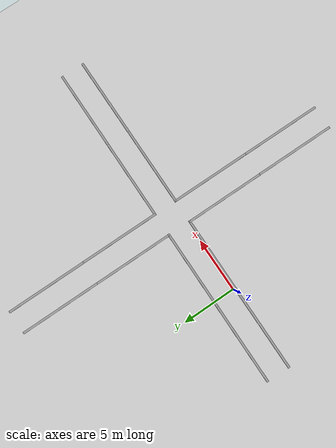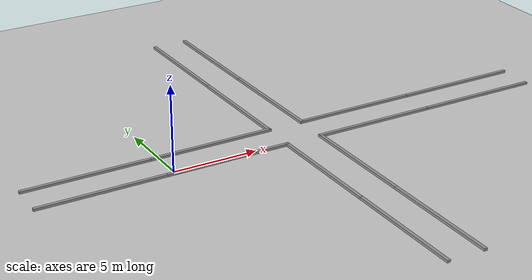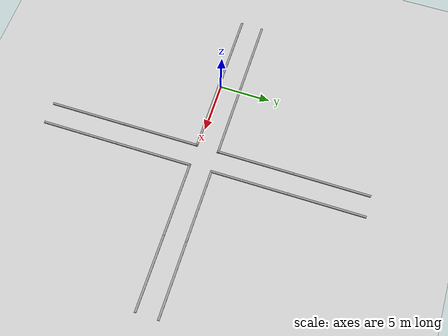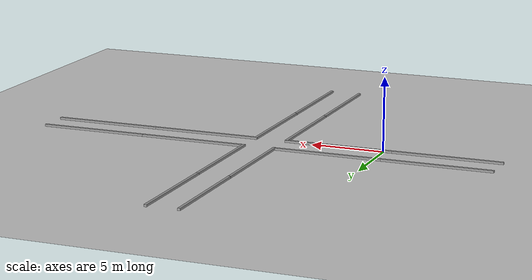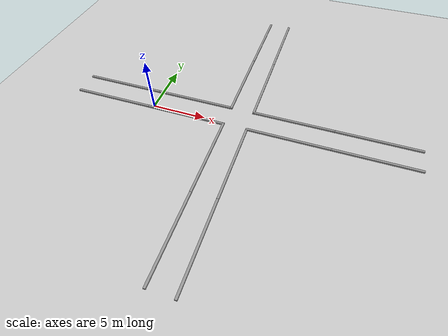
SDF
<sdf version="1.4">
 <world name="default">
  <model name="ground_plane">
   <static>1</static>
   <link name="link">
    <collision name="collision">
     <geometry><plane><normal>0 0 1</normal><size>100 100</size></plane></geometry>
     <surface><friction><ode><mu>100</mu><mu2>50</mu2></ode></friction></surface>
    </collision>
    <visual name="visual">
     <cast_shadows>0</cast_shadows>
     <geometry><plane><normal>0 0 1</normal><size>100 100</size></plane></geometry>
     <material>
      <script><uri>file://media/materials/scripts/gazebo.material</uri><name>Gazebo/Grey</name></script>
     </material>
    </visual>
   </link>
  </model>
  <light name="sun" type="directional">
   <pose>0 0 10 0 -0 0</pose>
   <diffuse>0.8 0.8 0.8 1</diffuse>
   <specular>0.2 0.2 0.2 1</specular>
   <attenuation>
    <range>1000</range>
    <constant>0.9</constant>
    <linear>0.01</linear>
    <quadratic>0.001</quadratic>
   </attenuation>
   <direction>-0.5 0.1 -0.9</direction>
  </light>
  <model name="ground">
   <link name="body">
    <collision name="geom">
     <geometry><plane><normal>0 0 1</normal><size>1 1</size></plane></geometry>
     <surface><friction><ode><mu>100</mu><mu2>50</mu2></ode></friction></surface>
    </collision>
   </link>
   <static>1</static>
  </model>
  <model name="grey_wall0_2">
   <link name="link">
    <inertial>
     <mass>1</mass>
     <inertia><ixx>1</ixx><ixy>0</ixy><ixz>0</ixz><iyy>1</iyy><iyz>0</iyz><izz>1</izz></inertia>
    </inertial>
    <visual name="visual">
     <cast_shadows>0</cast_shadows>
     <geometry><box><size>7.5 0.2 0.2</size></box></geometry>
     <material>
      <script>
       <uri>model://grey_wall/materials/scripts</uri>
       <uri>model://grey_wall/materials/textures</uri>
       <name>vrc/grey_wall</name>
      </script>
      <shader type="pixel"><normal_map>__default__</normal_map></shader>
      <ambient>1 1 1 1</ambient>
      <diffuse>1 1 1 1</diffuse>
      <specular>0 0 0 1</specular>
      <emissive>0 0 0 1</emissive>
     </material>
    </visual>
    <collision name="collision">
     <geometry><box><size>7.5 0.2 0.2</size></box></geometry>
     <surface>
      <friction>
       <ode><mu>1</mu><mu2>1</mu2><fdir1>0 0 0</fdir1><slip1>0</slip1><slip2>0</slip2></ode>
       <torsional>
        <coefficient>1</coefficient>
        <patch_radius>0</patch_radius>
        <surface_radius>0</surface_radius>
        <use_patch_radius>1</use_patch_radius>
        <ode><slip>0</slip></ode>
       </torsional>
      </friction>
      <bounce><restitution_coefficient>0</restitution_coefficient><threshold>1e+06</threshold></bounce>
      <contact>
       <collide_without_contact>0</collide_without_contact>
       <collide_without_contact_bitmask>1</collide_without_contact_bitmask>
       <collide_bitmask>1</collide_bitmask>
       <ode>
        <soft_cfm>0</soft_cfm>
        <soft_erp>0.2</soft_erp>
        <kp>1e+13</kp>
        <kd>1</kd>
        <max_vel>0.01</max_vel>
        <min_depth>0</min_depth>
       </ode>
       <bullet>
        <split_impulse>1</split_impulse>
        <split_impulse_penetration_threshold>-0.01</split_impulse_penetration_threshold>
        <soft_cfm>0</soft_cfm>
        <soft_erp>0.2</soft_erp>
        <kp>1e+13</kp>
        <kd>1</kd>
       </bullet>
      </contact>
     </surface>
    </collision>
   </link>
   <static>1</static>
   <pose>3.24738 -0.199036 0 0 -0 0</pose>
  </model>
  <model name="grey_wall0_2_clone">
   <link name="link">
    <inertial>
     <mass>1</mass>
     <inertia><ixx>1</ixx><ixy>0</ixy><ixz>0</ixz><iyy>1</iyy><iyz>0</iyz><izz>1</izz></inertia>
    </inertial>
    <visual name="visual">
     <cast_shadows>0</cast_shadows>
     <geometry><box><size>7.5 0.2 0.2</size></box></geometry>
     <material>
      <script>
       <uri>model://grey_wall/materials/scripts</uri>
       <uri>model://grey_wall/materials/textures</uri>
       <name>vrc/grey_wall</name>
      </script>
      <shader type="pixel"><normal_map>__default__</normal_map></shader>
      <ambient>1 1 1 1</ambient>
      <diffuse>1 1 1 1</diffuse>
      <specular>0 0 0 1</specular>
      <emissive>0 0 0 1</emissive>
     </material>
    </visual>
    <collision name="collision">
     <geometry><box><size>7.5 0.2 0.2</size></box></geometry>
     <surface>
      <friction>
       <ode><mu>1</mu><mu2>1</mu2><fdir1>0 0 0</fdir1><slip1>0</slip1><slip2>0</slip2></ode>
       <torsional>
        <coefficient>1</coefficient>
        <patch_radius>0</patch_radius>
        <surface_radius>0</surface_radius>
        <use_patch_radius>1</use_patch_radius>
        <ode><slip>0</slip></ode>
       </torsional>
      </friction>
      <bounce><restitution_coefficient>0</restitution_coefficient><threshold>1e+06</threshold></bounce>
      <contact>
       <collide_without_contact>0</collide_without_contact>
       <collide_without_contact_bitmask>1</collide_without_contact_bitmask>
       <collide_bitmask>1</collide_bitmask>
       <ode>
        <soft_cfm>0</soft_cfm>
        <soft_erp>0.2</soft_erp>
        <kp>1e+13</kp>
        <kd>1</kd>
        <max_vel>0.01</max_vel>
        <min_depth>0</min_depth>
       </ode>
       <bullet>
        <split_impulse>1</split_impulse>
        <split_impulse_penetration_threshold>-0.01</split_impulse_penetration_threshold>
        <soft_cfm>0</soft_cfm>
        <soft_erp>0.2</soft_erp>
        <kp>1e+13</kp>
        <kd>1</kd>
       </bullet>
      </contact>
     </surface>
    </collision>
   </link>
   <static>1</static>
   <pose>-4.25143 -0.199506 0 0 -0 0</pose>
  </model>
  <model name="grey_wall0_2_clone_0">
   <link name="link">
    <inertial>
     <mass>1</mass>
     <inertia><ixx>1</ixx><ixy>0</ixy><ixz>0</ixz><iyy>1</iyy><iyz>0</iyz><izz>1</izz></inertia>
    </inertial>
    <visual name="visual">
     <cast_shadows>0</cast_shadows>
     <geometry><box><size>7.5 0.2 0.2</size></box></geometry>
     <material>
      <script>
       <uri>model://grey_wall/materials/scripts</uri>
       <uri>model://grey_wall/materials/textures</uri>
       <name>vrc/grey_wall</name>
      </script>
      <shader type="pixel"><normal_map>__default__</normal_map></shader>
      <ambient>1 1 1 1</ambient>
      <diffuse>1 1 1 1</diffuse>
      <specular>0 0 0 1</specular>
      <emissive>0 0 0 1</emissive>
     </material>
    </visual>
    <collision name="collision">
     <geometry><box><size>7.5 0.2 0.2</size></box></geometry>
     <surface>
      <friction>
       <ode><mu>1</mu><mu2>1</mu2><fdir1>0 0 0</fdir1><slip1>0</slip1><slip2>0</slip2></ode>
       <torsional>
        <coefficient>1</coefficient>
        <patch_radius>0</patch_radius>
        <surface_radius>0</surface_radius>
        <use_patch_radius>1</use_patch_radius>
        <ode><slip>0</slip></ode>
       </torsional>
      </friction>
      <bounce><restitution_coefficient>0</restitution_coefficient><threshold>1e+06</threshold></bounce>
      <contact>
       <collide_without_contact>0</collide_without_contact>
       <collide_without_contact_bitmask>1</collide_without_contact_bitmask>
       <collide_bitmask>1</collide_bitmask>
       <ode>
        <soft_cfm>0</soft_cfm>
        <soft_erp>0.2</soft_erp>
        <kp>1e+13</kp>
        <kd>1</kd>
        <max_vel>0.01</max_vel>
        <min_depth>0</min_depth>
       </ode>
       <bullet>
        <split_impulse>1</split_impulse>
        <split_impulse_penetration_threshold>-0.01</split_impulse_penetration_threshold>
        <soft_cfm>0</soft_cfm>
        <soft_erp>0.2</soft_erp>
        <kp>1e+13</kp>
        <kd>1</kd>
       </bullet>
      </contact>
     </surface>
    </collision>
   </link>
   <static>1</static>
   <pose>3.30265 1.94618 0 0 -0 0</pose>
  </model>
  <model name="grey_wall0_2_clone_1">
   <link name="link">
    <inertial>
     <mass>1</mass>
     <inertia><ixx>1</ixx><ixy>0</ixy><ixz>0</ixz><iyy>1</iyy><iyz>0</iyz><izz>1</izz></inertia>
    </inertial>
    <visual name="visual">
     <cast_shadows>0</cast_shadows>
     <geometry><box><size>7.5 0.2 0.2</size></box></geometry>
     <material>
      <script>
       <uri>model://grey_wall/materials/scripts</uri>
       <uri>model://grey_wall/materials/textures</uri>
       <name>vrc/grey_wall</name>
      </script>
      <shader type="pixel"><normal_map>__default__</normal_map></shader>
      <ambient>1 1 1 1</ambient>
      <diffuse>1 1 1 1</diffuse>
      <specular>0 0 0 1</specular>
      <emissive>0 0 0 1</emissive>
     </material>
    </visual>
    <collision name="collision">
     <geometry><box><size>7.5 0.2 0.2</size></box></geometry>
     <surface>
      <friction>
       <ode><mu>1</mu><mu2>1</mu2><fdir1>0 0 0</fdir1><slip1>0</slip1><slip2>0</slip2></ode>
       <torsional>
        <coefficient>1</coefficient>
        <patch_radius>0</patch_radius>
        <surface_radius>0</surface_radius>
        <use_patch_radius>1</use_patch_radius>
        <ode><slip>0</slip></ode>
       </torsional>
      </friction>
      <bounce><restitution_coefficient>0</restitution_coefficient><threshold>1e+06</threshold></bounce>
      <contact>
       <collide_without_contact>0</collide_without_contact>
       <collide_without_contact_bitmask>1</collide_without_contact_bitmask>
       <collide_bitmask>1</collide_bitmask>
       <ode>
        <soft_cfm>0</soft_cfm>
        <soft_erp>0.2</soft_erp>
        <kp>1e+13</kp>
        <kd>1</kd>
        <max_vel>0.01</max_vel>
        <min_depth>0</min_depth>
       </ode>
       <bullet>
        <split_impulse>1</split_impulse>
        <split_impulse_penetration_threshold>-0.01</split_impulse_penetration_threshold>
        <soft_cfm>0</soft_cfm>
        <soft_erp>0.2</soft_erp>
        <kp>1e+13</kp>
        <kd>1</kd>
       </bullet>
      </contact>
     </surface>
    </collision>
   </link>
   <static>1</static>
   <pose>-4.1956 1.94715 0 0 -0 0</pose>
  </model>
  <model name="grey_wall0_2_clone_2">
   <link name="link">
    <inertial>
     <mass>1</mass>
     <inertia><ixx>1</ixx><ixy>0</ixy><ixz>0</ixz><iyy>1</iyy><iyz>0</iyz><izz>1</izz></inertia>
    </inertial>
    <visual name="visual">
     <cast_shadows>0</cast_shadows>
     <geometry><box><size>7.5 0.2 0.2</size></box></geometry>
     <material>
      <script>
       <uri>model://grey_wall/materials/scripts</uri>
       <uri>model://grey_wall/materials/textures</uri>
       <name>vrc/grey_wall</name>
      </script>
      <shader type="pixel"><normal_map>__default__</normal_map></shader>
      <ambient>1 1 1 1</ambient>
      <diffuse>1 1 1 1</diffuse>
      <specular>0 0 0 1</specular>
      <emissive>0 0 0 1</emissive>
     </material>
    </visual>
    <collision name="collision">
     <geometry><box><size>7.5 0.2 0.2</size></box></geometry>
     <surface>
      <friction>
       <ode><mu>1</mu><mu2>1</mu2><fdir1>0 0 0</fdir1><slip1>0</slip1><slip2>0</slip2></ode>
       <torsional>
        <coefficient>1</coefficient>
        <patch_radius>0</patch_radius>
        <surface_radius>0</surface_radius>
        <use_patch_radius>1</use_patch_radius>
        <ode><slip>0</slip></ode>
       </torsional>
      </friction>
      <bounce><restitution_coefficient>0</restitution_coefficient><threshold>1e+06</threshold></bounce>
      <contact>
       <collide_without_contact>0</collide_without_contact>
       <collide_without_contact_bitmask>1</collide_without_contact_bitmask>
       <collide_bitmask>1</collide_bitmask>
       <ode>
        <soft_cfm>0</soft_cfm>
        <soft_erp>0.2</soft_erp>
        <kp>1e+13</kp>
        <kd>1</kd>
        <max_vel>0.01</max_vel>
        <min_depth>0</min_depth>
       </ode>
       <bullet>
        <split_impulse>1</split_impulse>
        <split_impulse_penetration_threshold>-0.01</split_impulse_penetration_threshold>
        <soft_cfm>0</soft_cfm>
        <soft_erp>0.2</soft_erp>
        <kp>1e+13</kp>
        <kd>1</kd>
       </bullet>
      </contact>
     </surface>
    </collision>
   </link>
   <static>1</static>
   <pose>12.757 -0.18301 0 0 -0 0</pose>
  </model>
  <model name="grey_wall0_2_clone_3">
   <link name="link">
    <inertial>
     <mass>1</mass>
     <inertia><ixx>1</ixx><ixy>0</ixy><ixz>0</ixz><iyy>1</iyy><iyz>0</iyz><izz>1</izz></inertia>
    </inertial>
    <visual name="visual">
     <cast_shadows>0</cast_shadows>
     <geometry><box><size>7.5 0.2 0.2</size></box></geometry>
     <material>
      <script>
       <uri>model://grey_wall/materials/scripts</uri>
       <uri>model://grey_wall/materials/textures</uri>
       <name>vrc/grey_wall</name>
      </script>
      <shader type="pixel"><normal_map>__default__</normal_map></shader>
      <ambient>1 1 1 1</ambient>
      <diffuse>1 1 1 1</diffuse>
      <specular>0 0 0 1</specular>
      <emissive>0 0 0 1</emissive>
     </material>
    </visual>
    <collision name="collision">
     <geometry><box><size>7.5 0.2 0.2</size></box></geometry>
     <surface>
      <friction>
       <ode><mu>1</mu><mu2>1</mu2><fdir1>0 0 0</fdir1><slip1>0</slip1><slip2>0</slip2></ode>
       <torsional>
        <coefficient>1</coefficient>
        <patch_radius>0</patch_radius>
        <surface_radius>0</surface_radius>
        <use_patch_radius>1</use_patch_radius>
        <ode><slip>0</slip></ode>
       </torsional>
      </friction>
      <bounce><restitution_coefficient>0</restitution_coefficient><threshold>1e+06</threshold></bounce>
      <contact>
       <collide_without_contact>0</collide_without_contact>
       <collide_without_contact_bitmask>1</collide_without_contact_bitmask>
       <collide_bitmask>1</collide_bitmask>
       <ode>
        <soft_cfm>0</soft_cfm>
        <soft_erp>0.2</soft_erp>
        <kp>1e+13</kp>
        <kd>1</kd>
        <max_vel>0.01</max_vel>
        <min_depth>0</min_depth>
       </ode>
       <bullet>
        <split_impulse>1</split_impulse>
        <split_impulse_penetration_threshold>-0.01</split_impulse_penetration_threshold>
        <soft_cfm>0</soft_cfm>
        <soft_erp>0.2</soft_erp>
        <kp>1e+13</kp>
        <kd>1</kd>
       </bullet>
      </contact>
     </surface>
    </collision>
   </link>
   <static>1</static>
   <pose>20.1859 -0.183167 0 0 -0 0</pose>
  </model>
  <model name="grey_wall0_2_clone_4">
   <link name="link">
    <inertial>
     <mass>1</mass>
     <inertia><ixx>1</ixx><ixy>0</ixy><ixz>0</ixz><iyy>1</iyy><iyz>0</iyz><izz>1</izz></inertia>
    </inertial>
    <visual name="visual">
     <cast_shadows>0</cast_shadows>
     <geometry><box><size>7.5 0.2 0.2</size></box></geometry>
     <material>
      <script>
       <uri>model://grey_wall/materials/scripts</uri>
       <uri>model://grey_wall/materials/textures</uri>
       <name>vrc/grey_wall</name>
      </script>
      <shader type="pixel"><normal_map>__default__</normal_map></shader>
      <ambient>1 1 1 1</ambient>
      <diffuse>1 1 1 1</diffuse>
      <specular>0 0 0 1</specular>
      <emissive>0 0 0 1</emissive>
     </material>
    </visual>
    <collision name="collision">
     <geometry><box><size>7.5 0.2 0.2</size></box></geometry>
     <surface>
      <friction>
       <ode><mu>1</mu><mu2>1</mu2><fdir1>0 0 0</fdir1><slip1>0</slip1><slip2>0</slip2></ode>
       <torsional>
        <coefficient>1</coefficient>
        <patch_radius>0</patch_radius>
        <surface_radius>0</surface_radius>
        <use_patch_radius>1</use_patch_radius>
        <ode><slip>0</slip></ode>
       </torsional>
      </friction>
      <bounce><restitution_coefficient>0</restitution_coefficient><threshold>1e+06</threshold></bounce>
      <contact>
       <collide_without_contact>0</collide_without_contact>
       <collide_without_contact_bitmask>1</collide_without_contact_bitmask>
       <collide_bitmask>1</collide_bitmask>
       <ode>
        <soft_cfm>0</soft_cfm>
        <soft_erp>0.2</soft_erp>
        <kp>1e+13</kp>
        <kd>1</kd>
        <max_vel>0.01</max_vel>
        <min_depth>0</min_depth>
       </ode>
       <bullet>
        <split_impulse>1</split_impulse>
        <split_impulse_penetration_threshold>-0.01</split_impulse_penetration_threshold>
        <soft_cfm>0</soft_cfm>
        <soft_erp>0.2</soft_erp>
        <kp>1e+13</kp>
        <kd>1</kd>
       </bullet>
      </contact>
     </surface>
    </collision>
   </link>
   <static>1</static>
   <pose>12.7674 1.96146 0 0 -0 0</pose>
  </model>
  <model name="grey_wall0_2_clone_5">
   <link name="link">
    <inertial>
     <mass>1</mass>
     <inertia><ixx>1</ixx><ixy>0</ixy><ixz>0</ixz><iyy>1</iyy><iyz>0</iyz><izz>1</izz></inertia>
    </inertial>
    <visual name="visual">
     <cast_shadows>0</cast_shadows>
     <geometry><box><size>7.5 0.2 0.2</size></box></geometry>
     <material>
      <script>
       <uri>model://grey_wall/materials/scripts</uri>
       <uri>model://grey_wall/materials/textures</uri>
       <name>vrc/grey_wall</name>
      </script>
      <shader type="pixel"><normal_map>__default__</normal_map></shader>
      <ambient>1 1 1 1</ambient>
      <diffuse>1 1 1 1</diffuse>
      <specular>0 0 0 1</specular>
      <emissive>0 0 0 1</emissive>
     </material>
    </visual>
    <collision name="collision">
     <geometry><box><size>7.5 0.2 0.2</size></box></geometry>
     <surface>
      <friction>
       <ode><mu>1</mu><mu2>1</mu2><fdir1>0 0 0</fdir1><slip1>0</slip1><slip2>0</slip2></ode>
       <torsional>
        <coefficient>1</coefficient>
        <patch_radius>0</patch_radius>
        <surface_radius>0</surface_radius>
        <use_patch_radius>1</use_patch_radius>
        <ode><slip>0</slip></ode>
       </torsional>
      </friction>
      <bounce><restitution_coefficient>0</restitution_coefficient><threshold>1e+06</threshold></bounce>
      <contact>
       <collide_without_contact>0</collide_without_contact>
       <collide_without_contact_bitmask>1</collide_without_contact_bitmask>
       <collide_bitmask>1</collide_bitmask>
       <ode>
        <soft_cfm>0</soft_cfm>
        <soft_erp>0.2</soft_erp>
        <kp>1e+13</kp>
        <kd>1</kd>
        <max_vel>0.01</max_vel>
        <min_depth>0</min_depth>
       </ode>
       <bullet>
        <split_impulse>1</split_impulse>
        <split_impulse_penetration_threshold>-0.01</split_impulse_penetration_threshold>
        <soft_cfm>0</soft_cfm>
        <soft_erp>0.2</soft_erp>
        <kp>1e+13</kp>
        <kd>1</kd>
       </bullet>
      </contact>
     </surface>
    </collision>
   </link>
   <static>1</static>
   <pose>20.2091 1.95897 0 0 -0 0</pose>
  </model>
  <model name="grey_wall0_2_clone_6_clone">
   <link name="link">
    <inertial>
     <mass>1</mass>
     <inertia><ixx>1</ixx><ixy>0</ixy><ixz>0</ixz><iyy>1</iyy><iyz>0</iyz><izz>1</izz></inertia>
    </inertial>
    <visual name="visual">
     <cast_shadows>0</cast_shadows>
     <geometry><box><size>7.5 0.2 0.2</size></box></geometry>
     <material>
      <script>
       <uri>model://grey_wall/materials/scripts</uri>
       <uri>model://grey_wall/materials/textures</uri>
       <name>vrc/grey_wall</name>
      </script>
      <shader type="pixel"><normal_map>__default__</normal_map></shader>
      <ambient>1 1 1 1</ambient>
      <diffuse>1 1 1 1</diffuse>
      <specular>0 0 0 1</specular>
      <emissive>0 0 0 1</emissive>
     </material>
    </visual>
    <collision name="collision">
     <geometry><box><size>7.5 0.2 0.2</size></box></geometry>
     <surface>
      <friction>
       <ode><mu>1</mu><mu2>1</mu2><fdir1>0 0 0</fdir1><slip1>0</slip1><slip2>0</slip2></ode>
       <torsional>
        <coefficient>1</coefficient>
        <patch_radius>0</patch_radius>
        <surface_radius>0</surface_radius>
        <use_patch_radius>1</use_patch_radius>
        <ode><slip>0</slip></ode>
       </torsional>
      </friction>
      <bounce><restitution_coefficient>0</restitution_coefficient><threshold>1e+06</threshold></bounce>
      <contact>
       <collide_without_contact>0</collide_without_contact>
       <collide_without_contact_bitmask>1</collide_without_contact_bitmask>
       <collide_bitmask>1</collide_bitmask>
       <ode>
        <soft_cfm>0</soft_cfm>
        <soft_erp>0.2</soft_erp>
        <kp>1e+13</kp>
        <kd>1</kd>
        <max_vel>0.01</max_vel>
        <min_depth>0</min_depth>
       </ode>
       <bullet>
        <split_impulse>1</split_impulse>
        <split_impulse_penetration_threshold>-0.01</split_impulse_penetration_threshold>
        <soft_cfm>0</soft_cfm>
        <soft_erp>0.2</soft_erp>
        <kp>1e+13</kp>
        <kd>1</kd>
       </bullet>
      </contact>
     </surface>
    </collision>
   </link>
   <static>1</static>
   <pose>6.91419 -11.3154 0 0 -0 1.572</pose>
  </model>
  <model name="grey_wall0_2_clone_6_clone_0">
   <link name="link">
    <inertial>
     <mass>1</mass>
     <inertia><ixx>1</ixx><ixy>0</ixy><ixz>0</ixz><iyy>1</iyy><iyz>0</iyz><izz>1</izz></inertia>
    </inertial>
    <visual name="visual">
     <cast_shadows>0</cast_shadows>
     <geometry><box><size>7.5 0.2 0.2</size></box></geometry>
     <material>
      <script>
       <uri>model://grey_wall/materials/scripts</uri>
       <uri>model://grey_wall/materials/textures</uri>
       <name>vrc/grey_wall</name>
      </script>
      <shader type="pixel"><normal_map>__default__</normal_map></shader>
      <ambient>1 1 1 1</ambient>
      <diffuse>1 1 1 1</diffuse>
      <specular>0 0 0 1</specular>
      <emissive>0 0 0 1</emissive>
     </material>
    </visual>
    <collision name="collision">
     <geometry><box><size>7.5 0.2 0.2</size></box></geometry>
     <surface>
      <friction>
       <ode><mu>1</mu><mu2>1</mu2><fdir1>0 0 0</fdir1><slip1>0</slip1><slip2>0</slip2></ode>
       <torsional>
        <coefficient>1</coefficient>
        <patch_radius>0</patch_radius>
        <surface_radius>0</surface_radius>
        <use_patch_radius>1</use_patch_radius>
        <ode><slip>0</slip></ode>
       </torsional>
      </friction>
      <bounce><restitution_coefficient>0</restitution_coefficient><threshold>1e+06</threshold></bounce>
      <contact>
       <collide_without_contact>0</collide_without_contact>
       <collide_without_contact_bitmask>1</collide_without_contact_bitmask>
       <collide_bitmask>1</collide_bitmask>
       <ode>
        <soft_cfm>0</soft_cfm>
        <soft_erp>0.2</soft_erp>
        <kp>1e+13</kp>
        <kd>1</kd>
        <max_vel>0.01</max_vel>
        <min_depth>0</min_depth>
       </ode>
       <bullet>
        <split_impulse>1</split_impulse>
        <split_impulse_penetration_threshold>-0.01</split_impulse_penetration_threshold>
        <soft_cfm>0</soft_cfm>
        <soft_erp>0.2</soft_erp>
        <kp>1e+13</kp>
        <kd>1</kd>
       </bullet>
      </contact>
     </surface>
    </collision>
   </link>
   <static>1</static>
   <pose>9.08539 -3.8365 0 0 -0 1.572</pose>
  </model>
  <model name="grey_wall0_2_clone_6_clone_1">
   <link name="link">
    <inertial>
     <mass>1</mass>
     <inertia><ixx>1</ixx><ixy>0</ixy><ixz>0</ixz><iyy>1</iyy><iyz>0</iyz><izz>1</izz></inertia>
    </inertial>
    <visual name="visual">
     <cast_shadows>0</cast_shadows>
     <geometry><box><size>7.5 0.2 0.2</size></box></geometry>
     <material>
      <script>
       <uri>model://grey_wall/materials/scripts</uri>
       <uri>model://grey_wall/materials/textures</uri>
       <name>vrc/grey_wall</name>
      </script>
      <shader type="pixel"><normal_map>__default__</normal_map></shader>
      <ambient>1 1 1 1</ambient>
      <diffuse>1 1 1 1</diffuse>
      <specular>0 0 0 1</specular>
      <emissive>0 0 0 1</emissive>
     </material>
    </visual>
    <collision name="collision">
     <geometry><box><size>7.5 0.2 0.2</size></box></geometry>
     <surface>
      <friction>
       <ode><mu>1</mu><mu2>1</mu2><fdir1>0 0 0</fdir1><slip1>0</slip1><slip2>0</slip2></ode>
       <torsional>
        <coefficient>1</coefficient>
        <patch_radius>0</patch_radius>
        <surface_radius>0</surface_radius>
        <use_patch_radius>1</use_patch_radius>
        <ode><slip>0</slip></ode>
       </torsional>
      </friction>
      <bounce><restitution_coefficient>0</restitution_coefficient><threshold>1e+06</threshold></bounce>
      <contact>
       <collide_without_contact>0</collide_without_contact>
       <collide_without_contact_bitmask>1</collide_without_contact_bitmask>
       <collide_bitmask>1</collide_bitmask>
       <ode>
        <soft_cfm>0</soft_cfm>
        <soft_erp>0.2</soft_erp>
        <kp>1e+13</kp>
        <kd>1</kd>
        <max_vel>0.01</max_vel>
        <min_depth>0</min_depth>
       </ode>
       <bullet>
        <split_impulse>1</split_impulse>
        <split_impulse_penetration_threshold>-0.01</split_impulse_penetration_threshold>
        <soft_cfm>0</soft_cfm>
        <soft_erp>0.2</soft_erp>
        <kp>1e+13</kp>
        <kd>1</kd>
       </bullet>
      </contact>
     </surface>
    </collision>
   </link>
   <static>1</static>
   <pose>9.08876 -11.3281 0 0 -0 1.572</pose>
  </model>
  <model name="grey_wall0_2_clone_6_clone_2">
   <link name="link">
    <inertial>
     <mass>1</mass>
     <inertia><ixx>1</ixx><ixy>0</ixy><ixz>0</ixz><iyy>1</iyy><iyz>0</iyz><izz>1</izz></inertia>
    </inertial>
    <visual name="visual">
     <cast_shadows>0</cast_shadows>
     <geometry><box><size>7.5 0.2 0.2</size></box></geometry>
     <material>
      <script>
       <uri>model://grey_wall/materials/scripts</uri>
       <uri>model://grey_wall/materials/textures</uri>
       <name>vrc/grey_wall</name>
      </script>
      <shader type="pixel"><normal_map>__default__</normal_map></shader>
      <ambient>1 1 1 1</ambient>
      <diffuse>1 1 1 1</diffuse>
      <specular>0 0 0 1</specular>
      <emissive>0 0 0 1</emissive>
     </material>
    </visual>
    <collision name="collision">
     <geometry><box><size>7.5 0.2 0.2</size></box></geometry>
     <surface>
      <friction>
       <ode><mu>1</mu><mu2>1</mu2><fdir1>0 0 0</fdir1><slip1>0</slip1><slip2>0</slip2></ode>
       <torsional>
        <coefficient>1</coefficient>
        <patch_radius>0</patch_radius>
        <surface_radius>0</surface_radius>
        <use_patch_radius>1</use_patch_radius>
        <ode><slip>0</slip></ode>
       </torsional>
      </friction>
      <bounce><restitution_coefficient>0</restitution_coefficient><threshold>1e+06</threshold></bounce>
      <contact>
       <collide_without_contact>0</collide_without_contact>
       <collide_without_contact_bitmask>1</collide_without_contact_bitmask>
       <collide_bitmask>1</collide_bitmask>
       <ode>
        <soft_cfm>0</soft_cfm>
        <soft_erp>0.2</soft_erp>
        <kp>1e+13</kp>
        <kd>1</kd>
        <max_vel>0.01</max_vel>
        <min_depth>0</min_depth>
       </ode>
       <bullet>
        <split_impulse>1</split_impulse>
        <split_impulse_penetration_threshold>-0.01</split_impulse_penetration_threshold>
        <soft_cfm>0</soft_cfm>
        <soft_erp>0.2</soft_erp>
        <kp>1e+13</kp>
        <kd>1</kd>
       </bullet>
      </contact>
     </surface>
    </collision>
   </link>
   <static>1</static>
   <pose>9.09422 5.62422 0 0 -0 1.572</pose>
  </model>
  <model name="grey_wall0_2_clone_6_clone_3">
   <link name="link">
    <inertial>
     <mass>1</mass>
     <inertia><ixx>1</ixx><ixy>0</ixy><ixz>0</ixz><iyy>1</iyy><iyz>0</iyz><izz>1</izz></inertia>
    </inertial>
    <visual name="visual">
     <cast_shadows>0</cast_shadows>
     <geometry><box><size>7.5 0.2 0.2</size></box></geometry>
     <material>
      <script>
       <uri>model://grey_wall/materials/scripts</uri>
       <uri>model://grey_wall/materials/textures</uri>
       <name>vrc/grey_wall</name>
      </script>
      <shader type="pixel"><normal_map>__default__</normal_map></shader>
      <ambient>1 1 1 1</ambient>
      <diffuse>1 1 1 1</diffuse>
      <specular>0 0 0 1</specular>
      <emissive>0 0 0 1</emissive>
     </material>
    </visual>
    <collision name="collision">
     <geometry><box><size>7.5 0.2 0.2</size></box></geometry>
     <surface>
      <friction>
       <ode><mu>1</mu><mu2>1</mu2><fdir1>0 0 0</fdir1><slip1>0</slip1><slip2>0</slip2></ode>
       <torsional>
        <coefficient>1</coefficient>
        <patch_radius>0</patch_radius>
        <surface_radius>0</surface_radius>
        <use_patch_radius>1</use_patch_radius>
        <ode><slip>0</slip></ode>
       </torsional>
      </friction>
      <bounce><restitution_coefficient>0</restitution_coefficient><threshold>1e+06</threshold></bounce>
      <contact>
       <collide_without_contact>0</collide_without_contact>
       <collide_without_contact_bitmask>1</collide_without_contact_bitmask>
       <collide_bitmask>1</collide_bitmask>
       <ode>
        <soft_cfm>0</soft_cfm>
        <soft_erp>0.2</soft_erp>
        <kp>1e+13</kp>
        <kd>1</kd>
        <max_vel>0.01</max_vel>
        <min_depth>0</min_depth>
       </ode>
       <bullet>
        <split_impulse>1</split_impulse>
        <split_impulse_penetration_threshold>-0.01</split_impulse_penetration_threshold>
        <soft_cfm>0</soft_cfm>
        <soft_erp>0.2</soft_erp>
        <kp>1e+13</kp>
        <kd>1</kd>
       </bullet>
      </contact>
     </surface>
    </collision>
   </link>
   <static>1</static>
   <pose>9.07985 13.1204 0 0 -0 1.572</pose>
  </model>
  <model name="grey_wall0_2_clone_6_clone_4">
   <link name="link">
    <inertial>
     <mass>1</mass>
     <inertia><ixx>1</ixx><ixy>0</ixy><ixz>0</ixz><iyy>1</iyy><iyz>0</iyz><izz>1</izz></inertia>
    </inertial>
    <visual name="visual">
     <cast_shadows>0</cast_shadows>
     <geometry><box><size>7.5 0.2 0.2</size></box></geometry>
     <material>
      <script>
       <uri>model://grey_wall/materials/scripts</uri>
       <uri>model://grey_wall/materials/textures</uri>
       <name>vrc/grey_wall</name>
      </script>
      <shader type="pixel"><normal_map>__default__</normal_map></shader>
      <ambient>1 1 1 1</ambient>
      <diffuse>1 1 1 1</diffuse>
      <specular>0 0 0 1</specular>
      <emissive>0 0 0 1</emissive>
     </material>
    </visual>
    <collision name="collision">
     <geometry><box><size>7.5 0.2 0.2</size></box></geometry>
     <surface>
      <friction>
       <ode><mu>1</mu><mu2>1</mu2><fdir1>0 0 0</fdir1><slip1>0</slip1><slip2>0</slip2></ode>
       <torsional>
        <coefficient>1</coefficient>
        <patch_radius>0</patch_radius>
        <surface_radius>0</surface_radius>
        <use_patch_radius>1</use_patch_radius>
        <ode><slip>0</slip></ode>
       </torsional>
      </friction>
      <bounce><restitution_coefficient>0</restitution_coefficient><threshold>1e+06</threshold></bounce>
      <contact>
       <collide_without_contact>0</collide_without_contact>
       <collide_without_contact_bitmask>1</collide_without_contact_bitmask>
       <collide_bitmask>1</collide_bitmask>
       <ode>
        <soft_cfm>0</soft_cfm>
        <soft_erp>0.2</soft_erp>
        <kp>1e+13</kp>
        <kd>1</kd>
        <max_vel>0.01</max_vel>
        <min_depth>0</min_depth>
       </ode>
       <bullet>
        <split_impulse>1</split_impulse>
        <split_impulse_penetration_threshold>-0.01</split_impulse_penetration_threshold>
        <soft_cfm>0</soft_cfm>
        <soft_erp>0.2</soft_erp>
        <kp>1e+13</kp>
        <kd>1</kd>
       </bullet>
      </contact>
     </surface>
    </collision>
   </link>
   <static>1</static>
   <pose>6.93074 5.62835 0 0 -0 1.572</pose>
  </model>
  <model name="grey_wall0_2_clone_6_clone_5">
   <link name="link">
    <inertial>
     <mass>1</mass>
     <inertia><ixx>1</ixx><ixy>0</ixy><ixz>0</ixz><iyy>1</iyy><iyz>0</iyz><izz>1</izz></inertia>
    </inertial>
    <visual name="visual">
     <cast_shadows>0</cast_shadows>
     <geometry><box><size>7.5 0.2 0.2</size></box></geometry>
     <material>
      <script>
       <uri>model://grey_wall/materials/scripts</uri>
       <uri>model://grey_wall/materials/textures</uri>
       <name>vrc/grey_wall</name>
      </script>
      <shader type="pixel"><normal_map>__default__</normal_map></shader>
      <ambient>1 1 1 1</ambient>
      <diffuse>1 1 1 1</diffuse>
      <specular>0 0 0 1</specular>
      <emissive>0 0 0 1</emissive>
     </material>
    </visual>
    <collision name="collision">
     <geometry><box><size>7.5 0.2 0.2</size></box></geometry>
     <surface>
      <friction>
       <ode><mu>1</mu><mu2>1</mu2><fdir1>0 0 0</fdir1><slip1>0</slip1><slip2>0</slip2></ode>
       <torsional>
        <coefficient>1</coefficient>
        <patch_radius>0</patch_radius>
        <surface_radius>0</surface_radius>
        <use_patch_radius>1</use_patch_radius>
        <ode><slip>0</slip></ode>
       </torsional>
      </friction>
      <bounce><restitution_coefficient>0</restitution_coefficient><threshold>1e+06</threshold></bounce>
      <contact>
       <collide_without_contact>0</collide_without_contact>
       <collide_without_contact_bitmask>1</collide_without_contact_bitmask>
       <collide_bitmask>1</collide_bitmask>
       <ode>
        <soft_cfm>0</soft_cfm>
        <soft_erp>0.2</soft_erp>
        <kp>1e+13</kp>
        <kd>1</kd>
        <max_vel>0.01</max_vel>
        <min_depth>0</min_depth>
       </ode>
       <bullet>
        <split_impulse>1</split_impulse>
        <split_impulse_penetration_threshold>-0.01</split_impulse_penetration_threshold>
        <soft_cfm>0</soft_cfm>
        <soft_erp>0.2</soft_erp>
        <kp>1e+13</kp>
        <kd>1</kd>
       </bullet>
      </contact>
     </surface>
    </collision>
   </link>
   <static>1</static>
   <pose>6.92663 13.0704 0 0 -0 1.572</pose>
  </model>
  <gravity>0 0 -9.8</gravity>
  <magnetic_field>6e-06 2.3e-05 -4.2e-05</magnetic_field>
  <atmosphere type="adiabatic"/>
  <physics name="default_physics" default="0" type="ode">
   <max_step_size>0.001</max_step_size>
   <real_time_factor>1</real_time_factor>
   <real_time_update_rate>1000</real_time_update_rate>
  </physics>
  <scene><ambient>0.4 0.4 0.4 1</ambient><background>0.7 0.7 0.7 1</background><shadows>1</shadows></scene>
  <spherical_coordinates>
   <surface_model>EARTH_WGS84</surface_model>
   <latitude_deg>0</latitude_deg>
   <longitude_deg>0</longitude_deg>
   <elevation>0</elevation>
   <heading_deg>0</heading_deg>
  </spherical_coordinates>
  <model name="grey_wall0_2_clone_6_clone_clone">
   <link name="link">
    <inertial>
     <mass>1</mass>
     <inertia><ixx>1</ixx><ixy>0</ixy><ixz>0</ixz><iyy>1</iyy><iyz>0</iyz><izz>1</izz></inertia>
    </inertial>
    <visual name="visual">
     <cast_shadows>0</cast_shadows>
     <geometry><box><size>7.5 0.2 0.2</size></box></geometry>
     <material>
      <script>
       <uri>model://grey_wall/materials/scripts</uri>
       <uri>model://grey_wall/materials/textures</uri>
       <name>vrc/grey_wall</name>
      </script>
      <shader type="pixel"><normal_map>__default__</normal_map></shader>
      <ambient>1 1 1 1</ambient>
      <diffuse>1 1 1 1</diffuse>
      <specular>0 0 0 1</specular>
      <emissive>0 0 0 1</emissive>
     </material>
    </visual>
    <collision name="collision">
     <geometry><box><size>7.5 0.2 0.2</size></box></geometry>
     <surface>
      <friction>
       <ode><mu>1</mu><mu2>1</mu2><fdir1>0 0 0</fdir1><slip1>0</slip1><slip2>0</slip2></ode>
       <torsional>
        <coefficient>1</coefficient>
        <patch_radius>0</patch_radius>
        <surface_radius>0</surface_radius>
        <use_patch_radius>1</use_patch_radius>
        <ode><slip>0</slip></ode>
       </torsional>
      </friction>
      <bounce><restitution_coefficient>0</restitution_coefficient><threshold>1e+06</threshold></bounce>
      <contact>
       <collide_without_contact>0</collide_without_contact>
       <collide_without_contact_bitmask>1</collide_without_contact_bitmask>
       <collide_bitmask>1</collide_bitmask>
       <ode>
        <soft_cfm>0</soft_cfm>
        <soft_erp>0.2</soft_erp>
        <kp>1e+13</kp>
        <kd>1</kd>
        <max_vel>0.01</max_vel>
        <min_depth>0</min_depth>
       </ode>
       <bullet>
        <split_impulse>1</split_impulse>
        <split_impulse_penetration_threshold>-0.01</split_impulse_penetration_threshold>
        <soft_cfm>0</soft_cfm>
        <soft_erp>0.2</soft_erp>
        <kp>1e+13</kp>
        <kd>1</kd>
       </bullet>
      </contact>
     </surface>
    </collision>
   </link>
   <static>1</static>
   <pose>6.90067 -3.8813 0 0 -0 1.572</pose>
  </model>
 </world>
</sdf>
